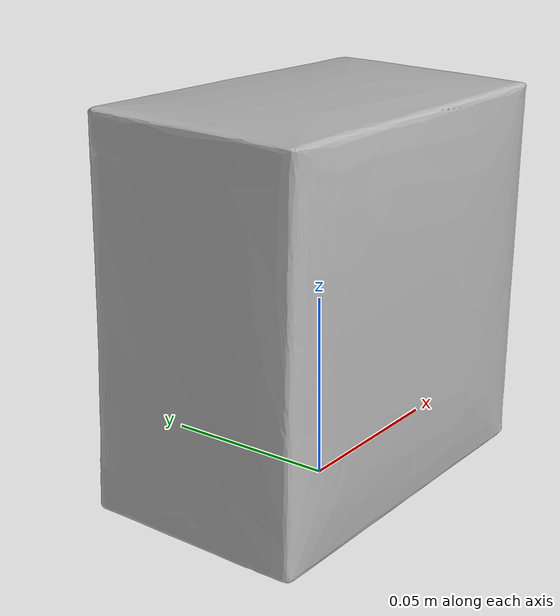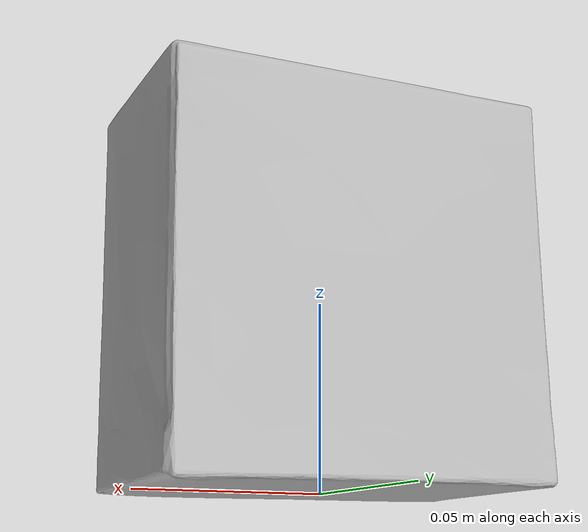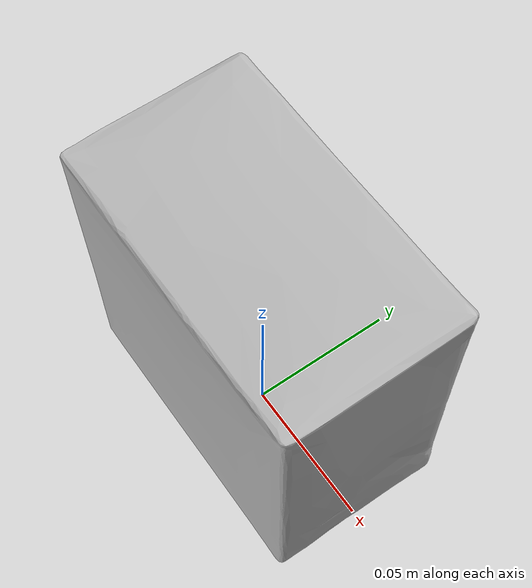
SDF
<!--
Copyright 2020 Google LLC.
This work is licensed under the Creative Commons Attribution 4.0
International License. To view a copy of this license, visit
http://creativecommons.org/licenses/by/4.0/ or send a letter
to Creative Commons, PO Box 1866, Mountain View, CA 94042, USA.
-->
<?xml version="1.0" ?>
<sdf version="1.6">
  <model name="Perricone_MD_OVM">
    <link name="link_0">
      <visual name="visual">
        <geometry>
          <mesh>
            <uri>meshes/model.obj</uri>
          </mesh>
        </geometry>
      </visual>
      <collision name="collision_0">
        <geometry>
          <mesh>
            <uri>meshes/model.obj</uri>
          </mesh>
        </geometry>
      </collision>
    </link>
  </model>
</sdf>
